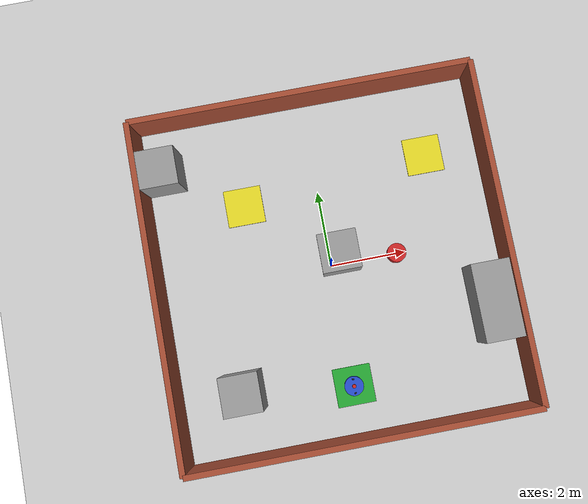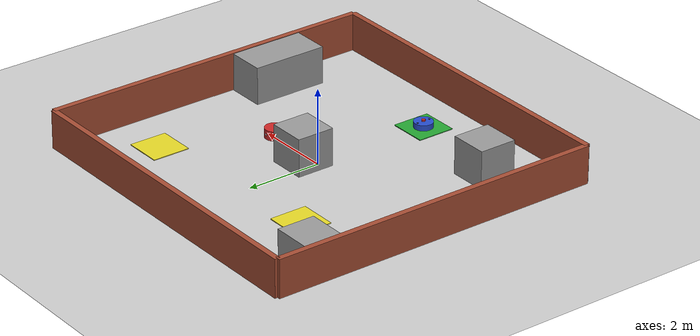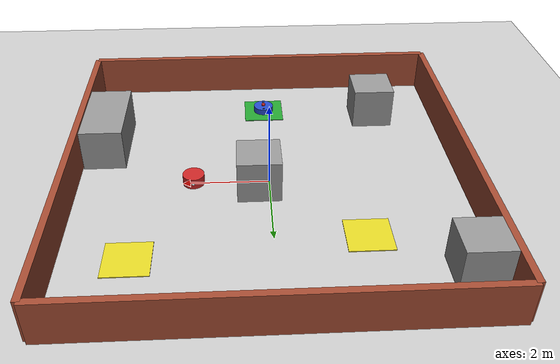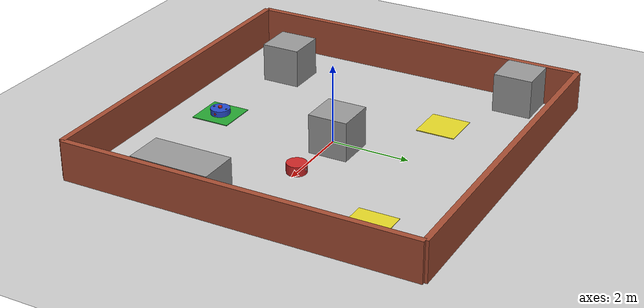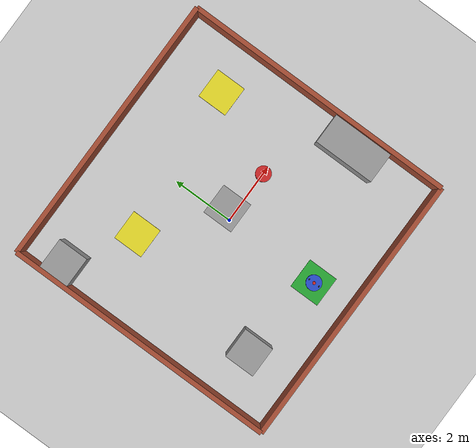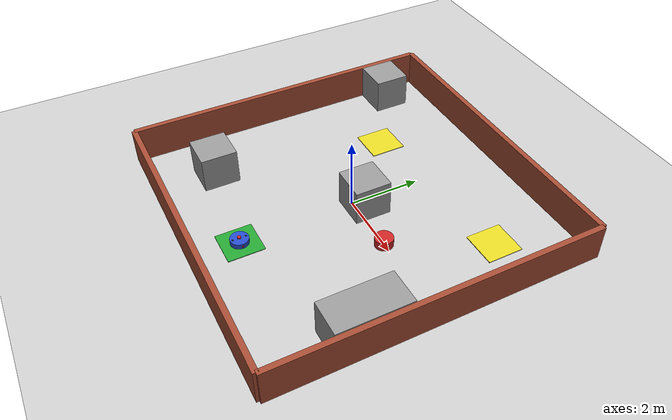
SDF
<?xml version="1.0" ?>
<sdf version='1.7'>
  <world name='default'>
    <model name='ground_plane'>
      <static>1</static>
      <link name='link'>
        <collision name='collision'>
          <geometry>
            <plane>
              <normal>0 0 1</normal>
              <size>100 100</size>
            </plane>
          </geometry>
          <surface>
            <contact>
              <collide_bitmask>65535</collide_bitmask>
              <ode/>
            </contact>
            <friction>
              <ode>
                <mu>100</mu>
                <mu2>50</mu2>
              </ode>
              <torsional>
                <ode/>
              </torsional>
            </friction>
            <bounce/>
          </surface>
          <max_contacts>10</max_contacts>
        </collision>
        <visual name='visual'>
          <cast_shadows>0</cast_shadows>
          <geometry>
            <plane>
              <normal>0 0 1</normal>
              <size>100 100</size>
            </plane>
          </geometry>
          <material>
            <script>
              <uri>file://media/materials/scripts/gazebo.material</uri>
              <name>Gazebo/Grey</name>
            </script>
          </material>
        </visual>
        <self_collide>0</self_collide>
        <enable_wind>0</enable_wind>
        <kinematic>0</kinematic>
      </link>
    </model>

    <light name='sun' type='directional'>
      <cast_shadows>1</cast_shadows>
      <pose>0 0 10 0 -0 0</pose>
      <diffuse>0.8 0.8 0.8 1</diffuse>
      <specular>0.2 0.2 0.2 1</specular>
      <attenuation>
        <range>1000</range>
        <constant>0.9</constant>
        <linear>0.01</linear>
        <quadratic>0.001</quadratic>
      </attenuation>
      <direction>-0.5 0.1 -0.9</direction>
      <spot>
        <inner_angle>0</inner_angle>
        <outer_angle>0</outer_angle>
        <falloff>0</falloff>
      </spot>
    </light>

    <gravity>0 0 -9.8</gravity>
    <magnetic_field>6e-06 2.3e-05 -4.2e-05</magnetic_field>
    <atmosphere type='adiabatic'/>

    <physics type='ode'>
      <max_step_size>0.001</max_step_size>
      <real_time_factor>1</real_time_factor>
      <real_time_update_rate>1000</real_time_update_rate>
    </physics>

    <scene>
      <ambient>0.4 0.4 0.4 1</ambient>
      <background>0.7 0.7 0.7 1</background>
      <shadows>1</shadows>
    </scene>

    <wind/>

    <spherical_coordinates>
      <surface_model>EARTH_WGS84</surface_model>
      <latitude_deg>0</latitude_deg>
      <longitude_deg>0</longitude_deg>
      <elevation>0</elevation>
      <heading_deg>0</heading_deg>
    </spherical_coordinates>

    <model name='brick_walls'>
      <pose>0 0 0 0 -0 0</pose>
      <static>1</static>

      <link name='Wall_0'>
        <pose>-4.5 0 0 0 -0 1.5708</pose>
        <collision name='Wall_0_Collision'>
          <geometry>
            <box>
              <size>9 0.15 1</size>
            </box>
          </geometry>
          <pose>0 0 0.5 0 -0 0</pose>
        </collision>
        <visual name='Wall_0_Visual'>
          <pose>0 0 0.5 0 -0 0</pose>
          <geometry>
            <box>
              <size>9 0.15 1</size>
            </box>
          </geometry>
          <material>
            <script>
              <uri>file://media/materials/scripts/gazebo.material</uri>
              <name>Gazebo/Bricks</name>
            </script>
          </material>
        </visual>
      </link>

      <link name='Wall_1'>
        <pose>0 4.5 0 0 -0 0</pose>
        <collision name='Wall_1_Collision'>
          <geometry>
            <box>
              <size>9 0.15 1</size>
            </box>
          </geometry>
          <pose>0 0 0.5 0 -0 0</pose>
        </collision>
        <visual name='Wall_1_Visual'>
          <pose>0 0 0.5 0 -0 0</pose>
          <geometry>
            <box>
              <size>9 0.15 1</size>
            </box>
          </geometry>
          <material>
            <script>
              <uri>file://media/materials/scripts/gazebo.material</uri>
              <name>Gazebo/Bricks</name>
            </script>
          </material>
        </visual>
      </link>

      <link name='Wall_2'>
        <pose>4.5 0 0 0 -0 -1.5708</pose>
        <collision name='Wall_2_Collision'>
          <geometry>
            <box>
              <size>9 0.15 1</size>
            </box>
          </geometry>
          <pose>0 0 0.5 0 -0 0</pose>
        </collision>
        <visual name='Wall_2_Visual'>
          <pose>0 0 0.5 0 -0 0</pose>
          <geometry>
            <box>
              <size>9 0.15 1</size>
            </box>
          </geometry>
          <material>
            <script>
              <uri>file://media/materials/scripts/gazebo.material</uri>
              <name>Gazebo/Bricks</name>
            </script>
          </material>
        </visual>
      </link>

      <link name='Wall_3'>
        <pose>0 -4.5 0 0 -0 3.14159</pose>
        <collision name='Wall_3_Collision'>
          <geometry>
            <box>
              <size>9 0.15 1</size>
            </box>
          </geometry>
          <pose>0 0 0.5 0 -0 0</pose>
        </collision>
        <visual name='Wall_3_Visual'>
          <pose>0 0 0.5 0 -0 0</pose>
          <geometry>
            <box>
              <size>9 0.15 1</size>
            </box>
          </geometry>
          <material>
            <script>
              <uri>file://media/materials/scripts/gazebo.material</uri>
              <name>Gazebo/Bricks</name>
            </script>
          </material>
        </visual>
      </link>
    </model>

    <model name='base_station'>
      <pose>0 -3.2 0.01 0 0 0</pose>
      <static>1</static>
      <link name='link'>
        <visual name='visual'>
          <geometry>
            <box>
              <size>1 1 0.02</size>
            </box>
          </geometry>
          <material>
            <script>
              <uri>file://media/materials/scripts/gazebo.material</uri>
              <name>Gazebo/Green</name>
            </script>
          </material>
        </visual>
      </link>
    </model>

    <model name='checkpoint_1'>
      <pose>-2 2 0.01 0 0 0</pose>
      <static>1</static>
      <link name='link'>
        <visual name='visual'>
          <geometry>
            <box>
              <size>1 1 0.02</size>
            </box>
          </geometry>
          <material>
            <script>
              <uri>file://media/materials/scripts/gazebo.material</uri>
              <name>Gazebo/Yellow</name>
            </script>
          </material>
        </visual>
      </link>
    </model>

    <model name='checkpoint_2'>
      <pose>3 2.5 0.01 0 0 0</pose>
      <static>1</static>
      <link name='link'>
        <visual name='visual'>
          <geometry>
            <box>
              <size>1 1 0.02</size>
            </box>
          </geometry>
          <material>
            <script>
              <uri>file://media/materials/scripts/gazebo.material</uri>
              <name>Gazebo/Yellow</name>
            </script>
          </material>
        </visual>
      </link>
    </model>

    <model name='simple_robot'>
      <pose>0 -3.2 0.1 0 -0 0</pose>

      <link name='base_link'>
        <inertial>
          <mass>5</mass>
          <inertia>
            <ixx>0.0625</ixx>
            <ixy>0</ixy>
            <ixz>0</ixz>
            <iyy>0.0625</iyy>
            <iyz>0</iyz>
            <izz>0.125</izz>
          </inertia>
        </inertial>

        <collision name='collision'>
          <geometry>
            <cylinder>
              <radius>0.25</radius>
              <length>0.15</length>
            </cylinder>
          </geometry>
        </collision>

        <visual name='visual'>
          <geometry>
            <cylinder>
              <radius>0.25</radius>
              <length>0.15</length>
            </cylinder>
          </geometry>
          <material>
            <script>
              <uri>file://media/materials/scripts/gazebo.material</uri>
              <name>Gazebo/Blue</name>
            </script>
          </material>
        </visual>

        <visual name='direction_marker'>
          <pose>0.15 0 0 3.14159 1.57079 3.14159</pose>
          <geometry>
            <cylinder>
              <radius>0.03</radius>
              <length>0.2</length>
            </cylinder>
          </geometry>
          <material>
            <script>
              <uri>file://media/materials/scripts/gazebo.material</uri>
              <name>Gazebo/Red</name>
            </script>
          </material>
        </visual>
      </link>

      <link name='left_wheel'>
        <pose>0 0.18 0 1.5708 0 0</pose>
        <inertial>
          <mass>0.5</mass>
          <inertia>
            <ixx>0.001</ixx>
            <ixy>0</ixy>
            <ixz>0</ixz>
            <iyy>0.001</iyy>
            <iyz>0</iyz>
            <izz>0.001</izz>
          </inertia>
        </inertial>
        <collision name='collision'>
          <geometry>
            <cylinder>
              <radius>0.08</radius>
              <length>0.04</length>
            </cylinder>
          </geometry>
          <surface>
            <friction>
              <ode>
                <mu>1</mu>
                <mu2>1</mu2>
              </ode>
            </friction>
          </surface>
        </collision>
        <visual name='visual'>
          <geometry>
            <cylinder>
              <radius>0.08</radius>
              <length>0.04</length>
            </cylinder>
          </geometry>
          <material>
            <script>
              <uri>file://media/materials/scripts/gazebo.material</uri>
              <name>Gazebo/Black</name>
            </script>
          </material>
        </visual>
      </link>

      <link name='right_wheel'>
        <pose>0 -0.18 0 1.5708 0 0</pose>
        <inertial>
          <mass>0.5</mass>
          <inertia>
            <ixx>0.001</ixx>
            <ixy>0</ixy>
            <ixz>0</ixz>
            <iyy>0.001</iyy>
            <iyz>0</iyz>
            <izz>0.001</izz>
          </inertia>
        </inertial>
        <collision name='collision'>
          <geometry>
            <cylinder>
              <radius>0.08</radius>
              <length>0.04</length>
            </cylinder>
          </geometry>
          <surface>
            <friction>
              <ode>
                <mu>1</mu>
                <mu2>1</mu2>
              </ode>
            </friction>
          </surface>
        </collision>
        <visual name='visual'>
          <geometry>
            <cylinder>
              <radius>0.08</radius>
              <length>0.04</length>
            </cylinder>
          </geometry>
          <material>
            <script>
              <uri>file://media/materials/scripts/gazebo.material</uri>
              <name>Gazebo/Black</name>
            </script>
          </material>
        </visual>
      </link>

      <link name='caster'>
        <pose>0.15 0 -0.05 0 0 0</pose>
        <inertial>
          <mass>0.1</mass>
          <inertia>
            <ixx>0.0001</ixx>
            <ixy>0</ixy>
            <ixz>0</ixz>
            <iyy>0.0001</iyy>
            <iyz>0</iyz>
            <izz>0.0001</izz>
          </inertia>
        </inertial>
        <collision name='collision'>
          <geometry>
            <sphere>
              <radius>0.03</radius>
            </sphere>
          </geometry>
          <surface>
            <friction>
              <ode>
                <mu>0.01</mu>
                <mu2>0.01</mu2>
              </ode>
            </friction>
          </surface>
        </collision>
        <visual name='visual'>
          <geometry>
            <sphere>
              <radius>0.03</radius>
            </sphere>
          </geometry>
          <material>
            <script>
              <uri>file://media/materials/scripts/gazebo.material</uri>
              <name>Gazebo/Grey</name>
            </script>
          </material>
        </visual>
      </link>

      <link name='lidar_link'>
        <pose>0 0 0.1 0 0 0</pose>
        <inertial>
          <mass>0.1</mass>
          <inertia>
            <ixx>0.0001</ixx>
            <ixy>0</ixy>
            <ixz>0</ixz>
            <iyy>0.0001</iyy>
            <iyz>0</iyz>
            <izz>0.0001</izz>
          </inertia>
        </inertial>
        <visual name='visual'>
          <geometry>
            <cylinder>
              <radius>0.05</radius>
              <length>0.04</length>
            </cylinder>
          </geometry>
          <material>
            <script>
              <uri>file://media/materials/scripts/gazebo.material</uri>
              <name>Gazebo/Red</name>
            </script>
          </material>
        </visual>
        <sensor name='laser' type='ray'>
          <pose>0 0 0 0 0 0</pose>
          <visualize>1</visualize>
          <update_rate>10</update_rate>
          <ray>
            <scan>
              <horizontal>
                <samples>360</samples>
                <resolution>1</resolution>
                <min_angle>-3.14159</min_angle>
                <max_angle>3.14159</max_angle>
              </horizontal>
            </scan>
            <range>
              <min>0.1</min>
              <max>10</max>
              <resolution>0.01</resolution>
            </range>
          </ray>
          <plugin name='laser_controller' filename='libgazebo_ros_ray_sensor.so'>
            <ros>
              <namespace/>
              <remapping>~/out:=scan</remapping>
            </ros>
            <output_type>sensor_msgs/LaserScan</output_type>
            <frame_name>lidar_link</frame_name>
          </plugin>
        </sensor>
      </link>

      <joint name='left_wheel_joint' type='revolute'>
        <parent>base_link</parent>
        <child>left_wheel</child>
        <axis>
          <xyz>0 0 1</xyz>
          <dynamics>
            <friction>0.1</friction>
          </dynamics>
        </axis>
      </joint>

      <joint name='right_wheel_joint' type='revolute'>
        <parent>base_link</parent>
        <child>right_wheel</child>
        <axis>
          <xyz>0 0 1</xyz>
          <dynamics>
            <friction>0.1</friction>
          </dynamics>
        </axis>
      </joint>

      <joint name='caster_joint' type='ball'>
        <parent>base_link</parent>
        <child>caster</child>
      </joint>

      <joint name='lidar_joint' type='fixed'>
        <parent>base_link</parent>
        <child>lidar_link</child>
      </joint>

      <plugin name='differential_drive_controller' filename='libgazebo_ros_diff_drive.so'>
        <ros>
          <namespace/>
        </ros>
        <update_rate>100</update_rate>
        <left_joint>left_wheel_joint</left_joint>
        <right_joint>right_wheel_joint</right_joint>
        <wheel_separation>0.36</wheel_separation>
        <wheel_diameter>0.16</wheel_diameter>
        <max_wheel_torque>20</max_wheel_torque>
        <max_wheel_acceleration>1.0</max_wheel_acceleration>
        <command_topic>cmd_vel</command_topic>
        <odometry_topic>odom</odometry_topic>
        <odometry_frame>odom</odometry_frame>
        <robot_base_frame>base_link</robot_base_frame>
        <publish_odom>1</publish_odom>
        <publish_odom_tf>1</publish_odom_tf>
        <publish_wheel_tf>0</publish_wheel_tf>
      </plugin>
    </model>

    <model name='chaser_robot'>
      <pose>1.75 0 0.15 0 0 1.57079</pose>

      <link name='base_link'>
        <inertial>
          <mass>5</mass>
          <inertia>
            <ixx>0.0625</ixx>
            <ixy>0</ixy>
            <ixz>0</ixz>
            <iyy>0.0625</iyy>
            <iyz>0</iyz>
            <izz>0.125</izz>
          </inertia>
        </inertial>

        <collision name='collision'>
          <geometry>
            <cylinder>
              <radius>0.25</radius>
              <length>0.25</length>
            </cylinder>
          </geometry>
        </collision>

        <visual name='visual'>
          <geometry>
            <cylinder>
              <radius>0.25</radius>
              <length>0.25</length>
            </cylinder>
          </geometry>
          <material>
            <script>
              <uri>file://media/materials/scripts/gazebo.material</uri>
              <name>Gazebo/Red</name>
            </script>
          </material>
        </visual>

        <visual name='direction_marker'>
          <pose>0.15 0 0 3.14159 1.57079 3.14159</pose>
          <geometry>
            <cylinder>
              <radius>0.03</radius>
              <length>0.2</length>
            </cylinder>
          </geometry>
          <material>
            <script>
              <uri>file://media/materials/scripts/gazebo.material</uri>
              <name>Gazebo/White</name>
            </script>
          </material>
        </visual>
      </link>

      <link name='left_wheel'>
        <pose>0 0.18 -0.05 1.5708 0 0</pose>
        <inertial>
          <mass>0.5</mass>
          <inertia>
            <ixx>0.001</ixx>
            <ixy>0</ixy>
            <ixz>0</ixz>
            <iyy>0.001</iyy>
            <iyz>0</iyz>
            <izz>0.001</izz>
          </inertia>
        </inertial>
        <collision name='collision'>
          <geometry>
            <cylinder>
              <radius>0.08</radius>
              <length>0.04</length>
            </cylinder>
          </geometry>
          <surface>
            <friction>
              <ode>
                <mu>1</mu>
                <mu2>1</mu2>
              </ode>
            </friction>
          </surface>
        </collision>
        <visual name='visual'>
          <geometry>
            <cylinder>
              <radius>0.08</radius>
              <length>0.04</length>
            </cylinder>
          </geometry>
          <material>
            <script>
              <uri>file://media/materials/scripts/gazebo.material</uri>
              <name>Gazebo/Black</name>
            </script>
          </material>
        </visual>
      </link>

      <link name='right_wheel'>
        <pose>0 -0.18 -0.05 1.5708 0 0</pose>
        <inertial>
          <mass>0.5</mass>
          <inertia>
            <ixx>0.001</ixx>
            <ixy>0</ixy>
            <ixz>0</ixz>
            <iyy>0.001</iyy>
            <iyz>0</iyz>
            <izz>0.001</izz>
          </inertia>
        </inertial>
        <collision name='collision'>
          <geometry>
            <cylinder>
              <radius>0.08</radius>
              <length>0.04</length>
            </cylinder>
          </geometry>
          <surface>
            <friction>
              <ode>
                <mu>1</mu>
                <mu2>1</mu2>
              </ode>
            </friction>
          </surface>
        </collision>
        <visual name='visual'>
          <geometry>
            <cylinder>
              <radius>0.08</radius>
              <length>0.04</length>
            </cylinder>
          </geometry>
          <material>
            <script>
              <uri>file://media/materials/scripts/gazebo.material</uri>
              <name>Gazebo/Black</name>
            </script>
          </material>
        </visual>
      </link>

      <link name='caster'>
        <pose>0.15 0 -0.10 0 0 0</pose>
        <inertial>
          <mass>0.1</mass>
          <inertia>
            <ixx>0.0001</ixx>
            <ixy>0</ixy>
            <ixz>0</ixz>
            <iyy>0.0001</iyy>
            <iyz>0</iyz>
            <izz>0.0001</izz>
          </inertia>
        </inertial>
        <collision name='collision'>
          <geometry>
            <sphere>
              <radius>0.03</radius>
            </sphere>
          </geometry>
          <surface>
            <friction>
              <ode>
                <mu>0.01</mu>
                <mu2>0.01</mu2>
              </ode>
            </friction>
          </surface>
        </collision>
        <visual name='visual'>
          <geometry>
            <sphere>
              <radius>0.03</radius>
            </sphere>
          </geometry>
          <material>
            <script>
              <uri>file://media/materials/scripts/gazebo.material</uri>
              <name>Gazebo/Grey</name>
            </script>
          </material>
        </visual>
      </link>

      <joint name='left_wheel_joint' type='revolute'>
        <parent>base_link</parent>
        <child>left_wheel</child>
        <axis>
          <xyz>0 0 1</xyz>
          <dynamics>
            <friction>0.1</friction>
          </dynamics>
        </axis>
      </joint>

      <joint name='right_wheel_joint' type='revolute'>
        <parent>base_link</parent>
        <child>right_wheel</child>
        <axis>
          <xyz>0 0 1</xyz>
          <dynamics>
            <friction>0.1</friction>
          </dynamics>
        </axis>
      </joint>

      <joint name='caster_joint' type='ball'>
        <parent>base_link</parent>
        <child>caster</child>
      </joint>

      <plugin name='differential_drive_controller' filename='libgazebo_ros_diff_drive.so'>
        <ros>
          <namespace>/chaser_robot</namespace>
        </ros>
        <update_rate>100</update_rate>
        <left_joint>left_wheel_joint</left_joint>
        <right_joint>right_wheel_joint</right_joint>
        <wheel_separation>0.36</wheel_separation>
        <wheel_diameter>0.16</wheel_diameter>
        <max_wheel_torque>20</max_wheel_torque>
        <max_wheel_acceleration>1.0</max_wheel_acceleration>
        <command_topic>cmd_vel</command_topic>
        <odometry_topic>odom</odometry_topic>
        <odometry_frame>chaser_odom</odometry_frame>
        <robot_base_frame>base_link</robot_base_frame>
        <publish_odom>1</publish_odom>
        <publish_odom_tf>1</publish_odom_tf>
        <publish_wheel_tf>0</publish_wheel_tf>
      </plugin>
    </model>

    <model name='unit_box'>
      <pose>-2.8 -2.8 0.5 0 0 0</pose>
      <static>1</static>
      <link name='link'>
        <collision name='collision'>
          <geometry>
            <box>
              <size>1 1 1</size>
            </box>
          </geometry>
        </collision>
        <visual name='visual'>
          <geometry>
            <box>
              <size>1 1 1</size>
            </box>
          </geometry>
          <material>
            <script>
              <uri>file://media/materials/scripts/gazebo.material</uri>
              <name>Gazebo/Grey</name>
            </script>
          </material>
        </visual>
      </link>
    </model>

    <model name='unit_box_0'>
      <pose>3.9 -1.7 0.5 0 0 0</pose>
      <static>1</static>
      <link name='link'>
        <collision name='collision'>
          <geometry>
            <box>
              <size>1 2 1</size>
            </box>
          </geometry>
        </collision>
        <visual name='visual'>
          <geometry>
            <box>
              <size>1 2 1</size>
            </box>
          </geometry>
          <material>
            <script>
              <uri>file://media/materials/scripts/gazebo.material</uri>
              <name>Gazebo/Grey</name>
            </script>
          </material>
        </visual>
      </link>
    </model>

    <model name='unit_box_1'>
      <pose>0.25 0.25 0.5 0 0 0</pose>
      <static>1</static>
      <link name='link'>
        <collision name='collision'>
          <geometry>
            <box>
              <size>1 1 1</size>
            </box>
          </geometry>
        </collision>
        <visual name='visual'>
          <geometry>
            <box>
              <size>1 1 1</size>
            </box>
          </geometry>
          <material>
            <script>
              <uri>file://media/materials/scripts/gazebo.material</uri>
              <name>Gazebo/Grey</name>
            </script>
          </material>
        </visual>
      </link>
    </model>

    <model name='unit_box_2'>
      <pose>-3.925 3.2 0.5 0 0 0</pose>
      <static>1</static>
      <link name='link'>
        <collision name='collision'>
          <geometry>
            <box>
              <size>1 1 1</size>
            </box>
          </geometry>
        </collision>
        <visual name='visual'>
          <geometry>
            <box>
              <size>1 1 1</size>
            </box>
          </geometry>
          <material>
            <script>
              <uri>file://media/materials/scripts/gazebo.material</uri>
              <name>Gazebo/Grey</name>
            </script>
          </material>
        </visual>
      </link>
    </model>

    <gui fullscreen='0'>
      <camera name='user_camera'>
        <pose>1.12333 -3.29242 15.1794 0 1.3845 1.59508</pose>
        <view_controller>orbit</view_controller>
        <projection_type>perspective</projection_type>
      </camera>
    </gui>

    <plugin name="gazebo_ros_state" filename="libgazebo_ros_state.so">
      <ros>
        <namespace>/gazebo</namespace>
      </ros>
      <update_rate>10.0</update_rate>
    </plugin>
  </world>
</sdf>
